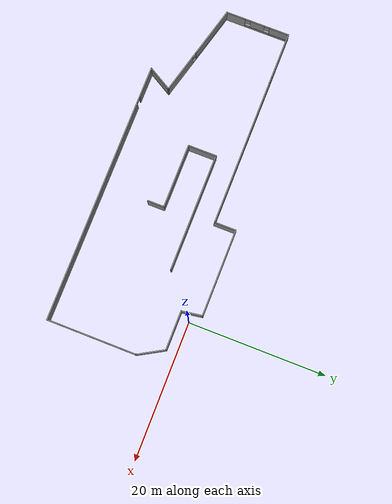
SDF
<?xml version='1.0'?>
<sdf version='1.7'>
  <model name='maze'>
    <pose>-18.1802 -8.26724 0 0 -0 0</pose>
    <link name='Wall_0'>
      <collision name='Wall_0_Collision'>
        <geometry>
          <box>
            <size>5.75 0.15 2.5</size>
          </box>
        </geometry>
        <pose>0 0 1.25 0 -0 0</pose>
      </collision>
      <visual name='Wall_0_Visual'>
        <pose>0 0 1.25 0 -0 0</pose>
        <geometry>
          <box>
            <size>5.75 0.15 2.5</size>
          </box>
        </geometry>
        <material>
          <script>
            <uri>file://media/materials/scripts/gazebo.material</uri>
            <name>Gazebo/Grey</name>
          </script>
          <ambient>1 1 1 1</ambient>
        </material>
        <meta>
          <layer>0</layer>
        </meta>
      </visual>
      <pose>20.042 6.79246 0 0 -0 0</pose>
    </link>
    <link name='Wall_1'>
      <collision name='Wall_1_Collision'>
        <geometry>
          <box>
            <size>4.25 0.15 2.5</size>
          </box>
        </geometry>
        <pose>0 0 1.25 0 -0 0</pose>
      </collision>
      <visual name='Wall_1_Visual'>
        <pose>0 0 1.25 0 -0 0</pose>
        <geometry>
          <box>
            <size>4.25 0.15 2.5</size>
          </box>
        </geometry>
        <material>
          <script>
            <uri>file://media/materials/scripts/gazebo.material</uri>
            <name>Gazebo/Grey</name>
          </script>
          <ambient>1 1 1 1</ambient>
        </material>
        <meta>
          <layer>0</layer>
        </meta>
      </visual>
      <pose>23.867 5.01711 0 0 -0 -1.0472</pose>
    </link>
    <link name='Wall_10'>
      <collision name='Wall_10_Collision'>
        <geometry>
          <box>
            <size>12.75 0.15 2.5</size>
          </box>
        </geometry>
        <pose>0 0 1.25 0 -0 0</pose>
      </collision>
      <visual name='Wall_10_Visual'>
        <pose>0 0 1.25 0 -0 0</pose>
        <geometry>
          <box>
            <size>12.75 0.15 2.5</size>
          </box>
        </geometry>
        <material>
          <script>
            <uri>file://media/materials/scripts/gazebo.material</uri>
            <name>Gazebo/Grey</name>
          </script>
          <ambient>1 1 1 1</ambient>
        </material>
        <meta>
          <layer>0</layer>
        </meta>
      </visual>
      <pose>10.4974 9.7253 0 0 -0 0</pose>
    </link>
    <link name='Wall_11'>
      <collision name='Wall_11_Collision'>
        <geometry>
          <box>
            <size>3.11634 0.15 2.5</size>
          </box>
        </geometry>
        <pose>0 0 1.25 0 -0 0</pose>
      </collision>
      <visual name='Wall_11_Visual'>
        <pose>0 0 1.25 0 -0 0</pose>
        <geometry>
          <box>
            <size>3.11634 0.15 2.5</size>
          </box>
        </geometry>
        <material>
          <script>
            <uri>file://media/materials/scripts/gazebo.material</uri>
            <name>Gazebo/Grey</name>
          </script>
          <ambient>1 1 1 1</ambient>
        </material>
        <meta>
          <layer>0</layer>
        </meta>
      </visual>
      <pose>17.0197 8.25888 0 0 -0 -1.42036</pose>
    </link>
    <link name='Wall_13'>
      <collision name='Wall_13_Collision'>
        <geometry>
          <box>
            <size>17.25 0.15 2.5</size>
          </box>
        </geometry>
        <pose>0 0 1.25 0 -0 0</pose>
      </collision>
      <visual name='Wall_13_Visual'>
        <pose>0 0 1.25 0 -0 0</pose>
        <geometry>
          <box>
            <size>17.25 0.15 2.5</size>
          </box>
        </geometry>
        <material>
          <script>
            <uri>file://media/materials/scripts/gazebo.material</uri>
            <name>Gazebo/Grey</name>
          </script>
          <ambient>1 1 1 1</ambient>
        </material>
        <meta>
          <layer>0</layer>
        </meta>
      </visual>
      <pose>3.91143 3.40008 0 0 -0 3.14159</pose>
    </link>
    <link name='Wall_14'>
      <collision name='Wall_14_Collision'>
        <geometry>
          <box>
            <size>4.25 0.15 2.5</size>
          </box>
        </geometry>
        <pose>0 0 1.25 0 -0 0</pose>
      </collision>
      <visual name='Wall_14_Visual'>
        <pose>0 0 1.25 0 -0 0</pose>
        <geometry>
          <box>
            <size>4.25 0.15 2.5</size>
          </box>
        </geometry>
        <material>
          <script>
            <uri>file://media/materials/scripts/gazebo.material</uri>
            <name>Gazebo/Grey</name>
          </script>
          <ambient>1 1 1 1</ambient>
        </material>
        <meta>
          <layer>0</layer>
        </meta>
      </visual>
      <pose>-4.63857 1.35008 0 0 -0 -1.5708</pose>
    </link>
    <link name='Wall_15'>
      <collision name='Wall_15_Collision'>
        <geometry>
          <box>
            <size>9.5 0.15 2.5</size>
          </box>
        </geometry>
        <pose>0 0 1.25 0 -0 0</pose>
      </collision>
      <visual name='Wall_15_Visual'>
        <pose>0 0 1.25 0 -0 0</pose>
        <geometry>
          <box>
            <size>9.5 0.15 2.5</size>
          </box>
        </geometry>
        <material>
          <script>
            <uri>file://media/materials/scripts/gazebo.material</uri>
            <name>Gazebo/Grey</name>
          </script>
          <ambient>1 1 1 1</ambient>
        </material>
        <meta>
          <layer>0</layer>
        </meta>
      </visual>
      <pose>0.036432 -0.699918 0 0 -0 0</pose>
    </link>
    <link name='Wall_16'>
      <collision name='Wall_16_Collision'>
        <geometry>
          <box>
            <size>2.5 0.15 2.5</size>
          </box>
        </geometry>
        <pose>0 0 1.25 0 -0 0</pose>
      </collision>
      <visual name='Wall_16_Visual'>
        <pose>0 0 1.25 0 -0 0</pose>
        <geometry>
          <box>
            <size>2.5 0.15 2.5</size>
          </box>
        </geometry>
        <material>
          <script>
            <uri>file://media/materials/scripts/gazebo.material</uri>
            <name>Gazebo/Grey</name>
          </script>
          <ambient>1 1 1 1</ambient>
        </material>
        <meta>
          <layer>0</layer>
        </meta>
      </visual>
      <pose>4.71143 -1.87492 0 0 -0 -1.5708</pose>
    </link>
    <link name='Wall_2'>
      <collision name='Wall_2_Collision'>
        <geometry>
          <box>
            <size>2.25 0.15 2.5</size>
          </box>
        </geometry>
        <pose>0 0 1.25 0 -0 0</pose>
      </collision>
      <visual name='Wall_2_Visual'>
        <pose>0 0 1.25 0 -0 0</pose>
        <geometry>
          <box>
            <size>2.25 0.15 2.5</size>
          </box>
        </geometry>
        <material>
          <script>
            <uri>file://media/materials/scripts/gazebo.material</uri>
            <name>Gazebo/Grey</name>
          </script>
          <ambient>1 1 1 1</ambient>
        </material>
        <meta>
          <layer>0</layer>
        </meta>
      </visual>
      <pose>24.892 2.19176 0 0 -0 -1.5708</pose>
    </link>
    <link name='Wall_3'>
      <collision name='Wall_3_Collision'>
        <geometry>
          <box>
            <size>11 0.15 2.5</size>
          </box>
        </geometry>
        <pose>0 0 1.25 0 -0 0</pose>
      </collision>
      <visual name='Wall_3_Visual'>
        <pose>0 0 1.25 0 -0 0</pose>
        <geometry>
          <box>
            <size>11 0.15 2.5</size>
          </box>
        </geometry>
        <material>
          <script>
            <uri>file://media/materials/scripts/gazebo.material</uri>
            <name>Gazebo/Grey</name>
          </script>
          <ambient>1 1 1 1</ambient>
        </material>
        <meta>
          <layer>0</layer>
        </meta>
      </visual>
      <pose>24.892 -4.28324 0 0 -0 -1.5708</pose>
    </link>
    <link name='Wall_4'>
      <pose>5.84198 -9.70824 0 0 -0 3.14159</pose>
      <visual name='Wall_4_Visual_0'>
        <pose>-2.75705 0 1.25 0 -0 0</pose>
        <geometry>
          <box>
            <size>32.7359 0.15 2.5</size>
          </box>
        </geometry>
        <material>
          <script>
            <uri>file://media/materials/scripts/gazebo.material</uri>
            <name>Gazebo/Grey</name>
          </script>
          <ambient>1 1 1 1</ambient>
        </material>
        <meta>
          <layer>0</layer>
        </meta>
      </visual>
      <collision name='Wall_4_Collision_0'>
        <geometry>
          <box>
            <size>32.7359 0.15 2.5</size>
          </box>
        </geometry>
        <pose>-2.75705 0 1.25 0 -0 0</pose>
      </collision>
      <visual name='Wall_4_Visual_1'>
        <pose>16.8179 0 1.25 0 -0 0</pose>
        <geometry>
          <box>
            <size>4.61411 0.15 2.5</size>
          </box>
        </geometry>
        <material>
          <script>
            <uri>file://media/materials/scripts/gazebo.material</uri>
            <name>Gazebo/Grey</name>
          </script>
          <ambient>1 1 1 1</ambient>
        </material>
        <meta>
          <layer>0</layer>
        </meta>
      </visual>
      <collision name='Wall_4_Collision_1'>
        <geometry>
          <box>
            <size>4.61411 0.15 2.5</size>
          </box>
        </geometry>
        <pose>16.8179 0 1.25 0 -0 0</pose>
      </collision>
      <visual name='Wall_4_Visual_2'>
        <pose>14.0609 0 2.25 0 -0 0</pose>
        <geometry>
          <box>
            <size>0.9 0.15 0.5</size>
          </box>
        </geometry>
        <material>
          <script>
            <uri>file://media/materials/scripts/gazebo.material</uri>
            <name>Gazebo/Grey</name>
          </script>
          <ambient>1 1 1 1</ambient>
        </material>
        <meta>
          <layer>0</layer>
        </meta>
      </visual>
      <collision name='Wall_4_Collision_2'>
        <geometry>
          <box>
            <size>0.9 0.15 0.5</size>
          </box>
        </geometry>
        <pose>14.0609 0 2.25 0 -0 0</pose>
      </collision>
    </link>
    <link name='Wall_5'>
      <collision name='Wall_5_Collision'>
        <geometry>
          <box>
            <size>4 0.15 2.5</size>
          </box>
        </geometry>
        <pose>0 0 1.25 0 -0 0</pose>
      </collision>
      <visual name='Wall_5_Visual'>
        <pose>0 0 1.25 0 -0 0</pose>
        <geometry>
          <box>
            <size>4 0.15 2.5</size>
          </box>
        </geometry>
        <material>
          <script>
            <uri>file://media/materials/scripts/gazebo.material</uri>
            <name>Gazebo/Grey</name>
          </script>
          <ambient>1 1 1 1</ambient>
        </material>
        <meta>
          <layer>0</layer>
        </meta>
      </visual>
      <pose>-12.2455 -8.04115 0 0 -0 1.0472</pose>
    </link>
    <link name='Wall_6'>
      <pose>-18.0928 -4.54937 0 0 -0 2.87979</pose>
      <visual name='Wall_6_Visual_0'>
        <pose>-4.19644 0 1.25 0 -0 0</pose>
        <geometry>
          <box>
            <size>5.85711 0.15 2.5</size>
          </box>
        </geometry>
        <material>
          <script>
            <uri>file://media/materials/scripts/gazebo.material</uri>
            <name>Gazebo/Grey</name>
          </script>
          <ambient>1 1 1 1</ambient>
        </material>
        <meta>
          <layer>0</layer>
        </meta>
      </visual>
      <collision name='Wall_6_Collision_0'>
        <geometry>
          <box>
            <size>5.85711 0.15 2.5</size>
          </box>
        </geometry>
        <pose>-4.19644 0 1.25 0 -0 0</pose>
      </collision>
      <visual name='Wall_6_Visual_1'>
        <pose>2.92856 0 0.25 0 -0 0</pose>
        <geometry>
          <box>
            <size>8.39289 0.15 0.5</size>
          </box>
        </geometry>
        <material>
          <script>
            <uri>file://media/materials/scripts/gazebo.material</uri>
            <name>Gazebo/Grey</name>
          </script>
          <ambient>1 1 1 1</ambient>
        </material>
        <meta>
          <layer>0</layer>
        </meta>
      </visual>
      <collision name='Wall_6_Collision_1'>
        <geometry>
          <box>
            <size>8.39289 0.15 0.5</size>
          </box>
        </geometry>
        <pose>2.92856 0 0.25 0 -0 0</pose>
      </collision>
      <visual name='Wall_6_Visual_2'>
        <pose>3.32856 0 1.5 0 -0 0</pose>
        <geometry>
          <box>
            <size>7.59289 0.15 2</size>
          </box>
        </geometry>
        <material>
          <script>
            <uri>file://media/materials/scripts/gazebo.material</uri>
            <name>Gazebo/Grey</name>
          </script>
          <ambient>1 1 1 1</ambient>
        </material>
        <meta>
          <layer>0</layer>
        </meta>
      </visual>
      <collision name='Wall_6_Collision_2'>
        <geometry>
          <box>
            <size>7.59289 0.15 2</size>
          </box>
        </geometry>
        <pose>3.32856 0 1.5 0 -0 0</pose>
      </collision>
      <visual name='Wall_6_Visual_3'>
        <pose>-0.867887 0 1.9 0 -0 0</pose>
        <geometry>
          <box>
            <size>0.8 0.15 1.2</size>
          </box>
        </geometry>
        <material>
          <script>
            <uri>file://media/materials/scripts/gazebo.material</uri>
            <name>Gazebo/Grey</name>
          </script>
          <ambient>1 1 1 1</ambient>
        </material>
        <meta>
          <layer>0</layer>
        </meta>
      </visual>
      <collision name='Wall_6_Collision_3'>
        <geometry>
          <box>
            <size>0.8 0.15 1.2</size>
          </box>
        </geometry>
        <pose>-0.867887 0 1.9 0 -0 0</pose>
      </collision>
    </link>
    <link name='Wall_7'>
      <pose>-24.9026 1.9503 0 0 -0 1.5708</pose>
      <visual name='Wall_7_Visual_0'>
        <pose>-3.30054 0 1.25 0 -0 0</pose>
        <geometry>
          <box>
            <size>2.89892 0.15 2.5</size>
          </box>
        </geometry>
        <material>
          <script>
            <uri>file://media/materials/scripts/gazebo.material</uri>
            <name>Gazebo/Grey</name>
          </script>
          <ambient>1 1 1 1</ambient>
        </material>
        <meta>
          <layer>0</layer>
        </meta>
      </visual>
      <collision name='Wall_7_Collision_0'>
        <geometry>
          <box>
            <size>2.89892 0.15 2.5</size>
          </box>
        </geometry>
        <pose>-3.30054 0 1.25 0 -0 0</pose>
      </collision>
      <visual name='Wall_7_Visual_1'>
        <pose>1.44946 0 0.25 0 -0 0</pose>
        <geometry>
          <box>
            <size>6.60108 0.15 0.5</size>
          </box>
        </geometry>
        <material>
          <script>
            <uri>file://media/materials/scripts/gazebo.material</uri>
            <name>Gazebo/Grey</name>
          </script>
          <ambient>1 1 1 1</ambient>
        </material>
        <meta>
          <layer>0</layer>
        </meta>
      </visual>
      <collision name='Wall_7_Collision_1'>
        <geometry>
          <box>
            <size>6.60108 0.15 0.5</size>
          </box>
        </geometry>
        <pose>1.44946 0 0.25 0 -0 0</pose>
      </collision>
      <visual name='Wall_7_Visual_2'>
        <pose>-0.000652 0 1.5 0 -0 0</pose>
        <geometry>
          <box>
            <size>2.10086 0.15 2</size>
          </box>
        </geometry>
        <material>
          <script>
            <uri>file://media/materials/scripts/gazebo.material</uri>
            <name>Gazebo/Grey</name>
          </script>
          <ambient>1 1 1 1</ambient>
        </material>
        <meta>
          <layer>0</layer>
        </meta>
      </visual>
      <collision name='Wall_7_Collision_2'>
        <geometry>
          <box>
            <size>2.10086 0.15 2</size>
          </box>
        </geometry>
        <pose>-0.000652 0 1.5 0 -0 0</pose>
      </collision>
      <visual name='Wall_7_Visual_3'>
        <pose>3.29989 0 1.5 0 -0 0</pose>
        <geometry>
          <box>
            <size>2.90022 0.15 2</size>
          </box>
        </geometry>
        <material>
          <script>
            <uri>file://media/materials/scripts/gazebo.material</uri>
            <name>Gazebo/Grey</name>
          </script>
          <ambient>1 1 1 1</ambient>
        </material>
        <meta>
          <layer>0</layer>
        </meta>
      </visual>
      <collision name='Wall_7_Collision_3'>
        <geometry>
          <box>
            <size>2.90022 0.15 2</size>
          </box>
        </geometry>
        <pose>3.29989 0 1.5 0 -0 0</pose>
      </collision>
      <visual name='Wall_7_Visual_4'>
        <pose>-1.45108 0 1.9 0 -0 0</pose>
        <geometry>
          <box>
            <size>0.8 0.15 1.2</size>
          </box>
        </geometry>
        <material>
          <script>
            <uri>file://media/materials/scripts/gazebo.material</uri>
            <name>Gazebo/Grey</name>
          </script>
          <ambient>1 1 1 1</ambient>
        </material>
        <meta>
          <layer>0</layer>
        </meta>
      </visual>
      <collision name='Wall_7_Collision_4'>
        <geometry>
          <box>
            <size>0.8 0.15 1.2</size>
          </box>
        </geometry>
        <pose>-1.45108 0 1.9 0 -0 0</pose>
      </collision>
      <visual name='Wall_7_Visual_5'>
        <pose>1.44978 0 1.9 0 -0 0</pose>
        <geometry>
          <box>
            <size>0.8 0.15 1.2</size>
          </box>
        </geometry>
        <material>
          <script>
            <uri>file://media/materials/scripts/gazebo.material</uri>
            <name>Gazebo/Grey</name>
          </script>
          <ambient>1 1 1 1</ambient>
        </material>
        <meta>
          <layer>0</layer>
        </meta>
      </visual>
      <collision name='Wall_7_Collision_5'>
        <geometry>
          <box>
            <size>0.8 0.15 1.2</size>
          </box>
        </geometry>
        <pose>1.44978 0 1.9 0 -0 0</pose>
      </collision>
    </link>
    <link name='Wall_8'>
      <pose>-10.3526 6.6253 0 0 -0 0</pose>
      <visual name='Wall_8_Visual_0'>
        <pose>-11.1713 0 1.25 0 -0 0</pose>
        <geometry>
          <box>
            <size>6.90747 0.15 2.5</size>
          </box>
        </geometry>
        <material>
          <script>
            <uri>file://media/materials/scripts/gazebo.material</uri>
            <name>Gazebo/Grey</name>
          </script>
          <ambient>1 1 1 1</ambient>
        </material>
        <meta>
          <layer>0</layer>
        </meta>
      </visual>
      <collision name='Wall_8_Collision_0'>
        <geometry>
          <box>
            <size>6.90747 0.15 2.5</size>
          </box>
        </geometry>
        <pose>-11.1713 0 1.25 0 -0 0</pose>
      </collision>
      <visual name='Wall_8_Visual_1'>
        <pose>3.45373 0 0.25 0 -0 0</pose>
        <geometry>
          <box>
            <size>22.3425 0.15 0.5</size>
          </box>
        </geometry>
        <material>
          <script>
            <uri>file://media/materials/scripts/gazebo.material</uri>
            <name>Gazebo/Grey</name>
          </script>
          <ambient>1 1 1 1</ambient>
        </material>
        <meta>
          <layer>0</layer>
        </meta>
      </visual>
      <collision name='Wall_8_Collision_1'>
        <geometry>
          <box>
            <size>22.3425 0.15 0.5</size>
          </box>
        </geometry>
        <pose>3.45373 0 0.25 0 -0 0</pose>
      </collision>
      <visual name='Wall_8_Visual_2'>
        <pose>3.85373 0 1.5 0 -0 0</pose>
        <geometry>
          <box>
            <size>21.5425 0.15 2</size>
          </box>
        </geometry>
        <material>
          <script>
            <uri>file://media/materials/scripts/gazebo.material</uri>
            <name>Gazebo/Grey</name>
          </script>
          <ambient>1 1 1 1</ambient>
        </material>
        <meta>
          <layer>0</layer>
        </meta>
      </visual>
      <collision name='Wall_8_Collision_2'>
        <geometry>
          <box>
            <size>21.5425 0.15 2</size>
          </box>
        </geometry>
        <pose>3.85373 0 1.5 0 -0 0</pose>
      </collision>
      <visual name='Wall_8_Visual_3'>
        <pose>-7.31753 0 1.9 0 -0 0</pose>
        <geometry>
          <box>
            <size>0.8 0.15 1.2</size>
          </box>
        </geometry>
        <material>
          <script>
            <uri>file://media/materials/scripts/gazebo.material</uri>
            <name>Gazebo/Grey</name>
          </script>
          <ambient>1 1 1 1</ambient>
        </material>
        <meta>
          <layer>0</layer>
        </meta>
      </visual>
      <collision name='Wall_8_Collision_3'>
        <geometry>
          <box>
            <size>0.8 0.15 1.2</size>
          </box>
        </geometry>
        <pose>-7.31753 0 1.9 0 -0 0</pose>
      </collision>
    </link>
    <link name='Wall_9'>
      <collision name='Wall_9_Collision'>
        <geometry>
          <box>
            <size>3.25 0.15 2.5</size>
          </box>
        </geometry>
        <pose>0 0 1.25 0 -0 0</pose>
      </collision>
      <visual name='Wall_9_Visual'>
        <pose>0 0 1.25 0 -0 0</pose>
        <geometry>
          <box>
            <size>3.25 0.15 2.5</size>
          </box>
        </geometry>
        <material>
          <script>
            <uri>file://media/materials/scripts/gazebo.material</uri>
            <name>Gazebo/Grey</name>
          </script>
          <ambient>1 1 1 1</ambient>
        </material>
        <meta>
          <layer>0</layer>
        </meta>
      </visual>
      <pose>4.19742 8.1753 0 0 -0 1.5708</pose>
    </link>
    <static>1</static>
  </model>
</sdf>
